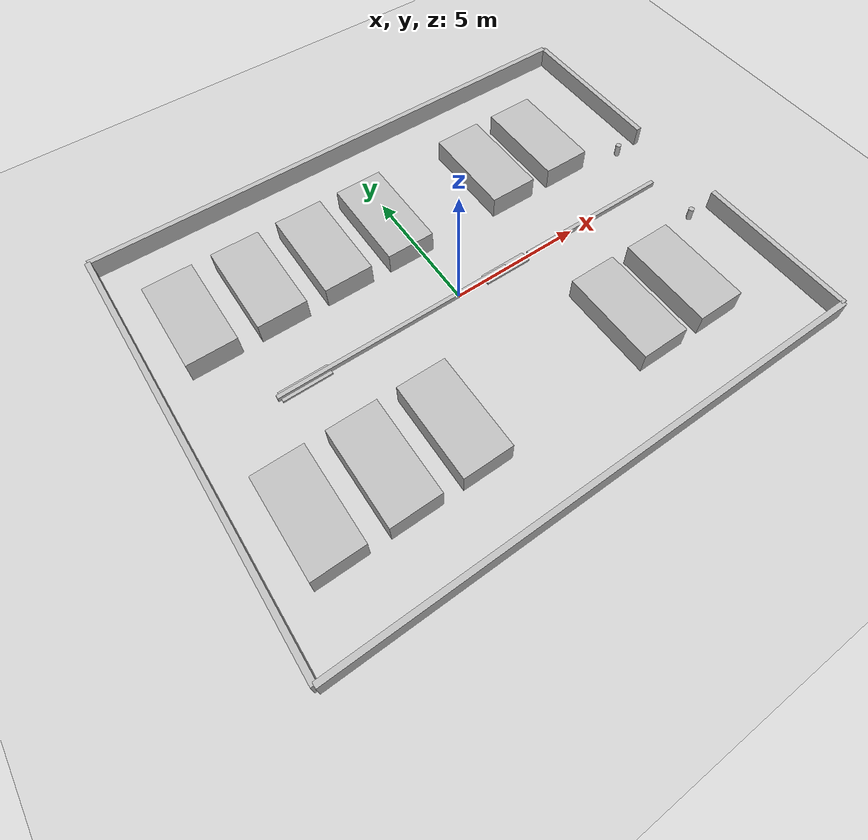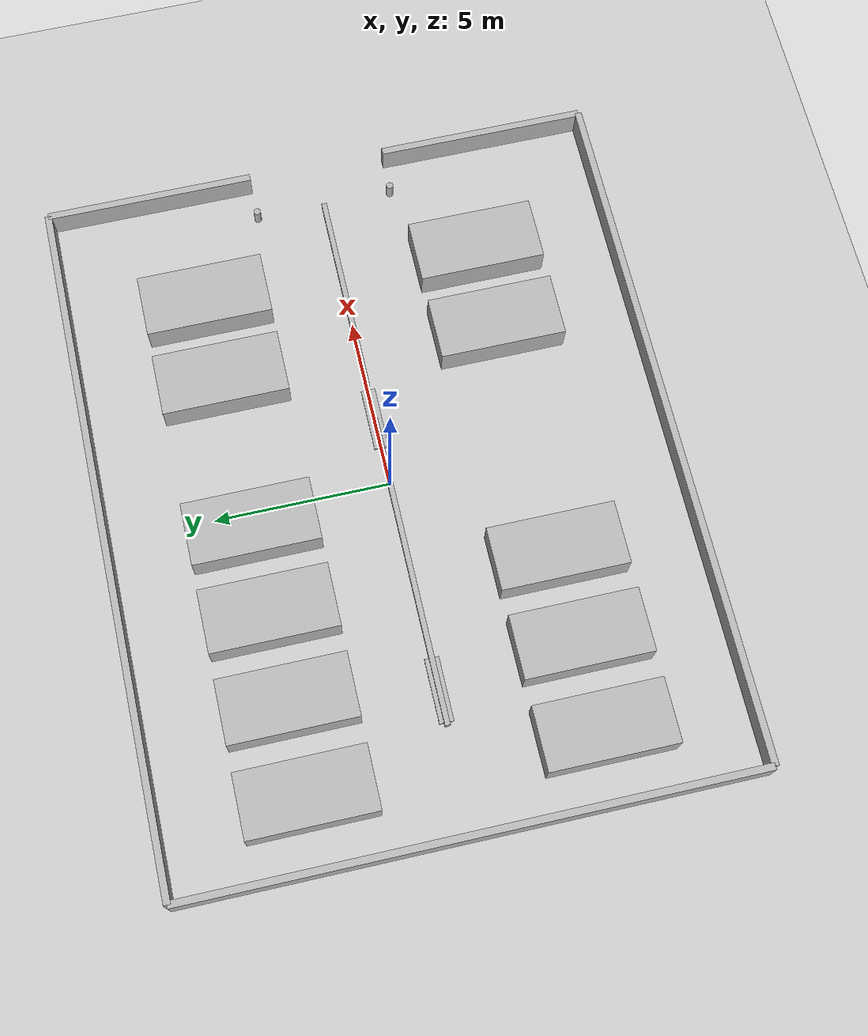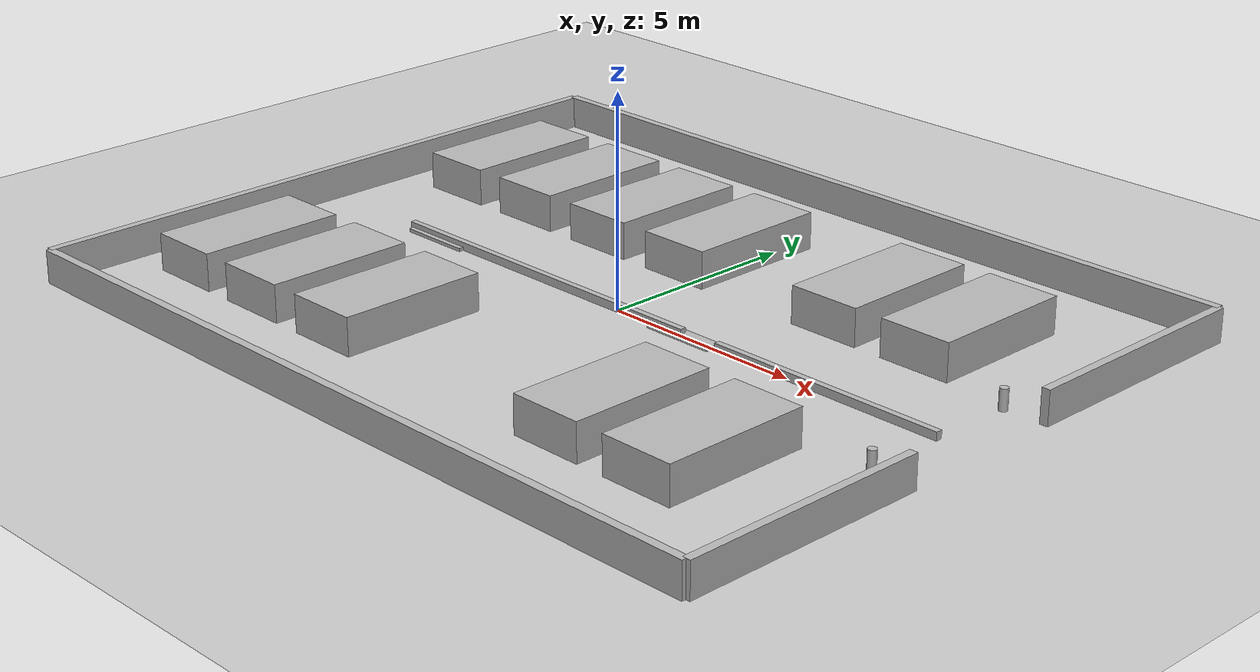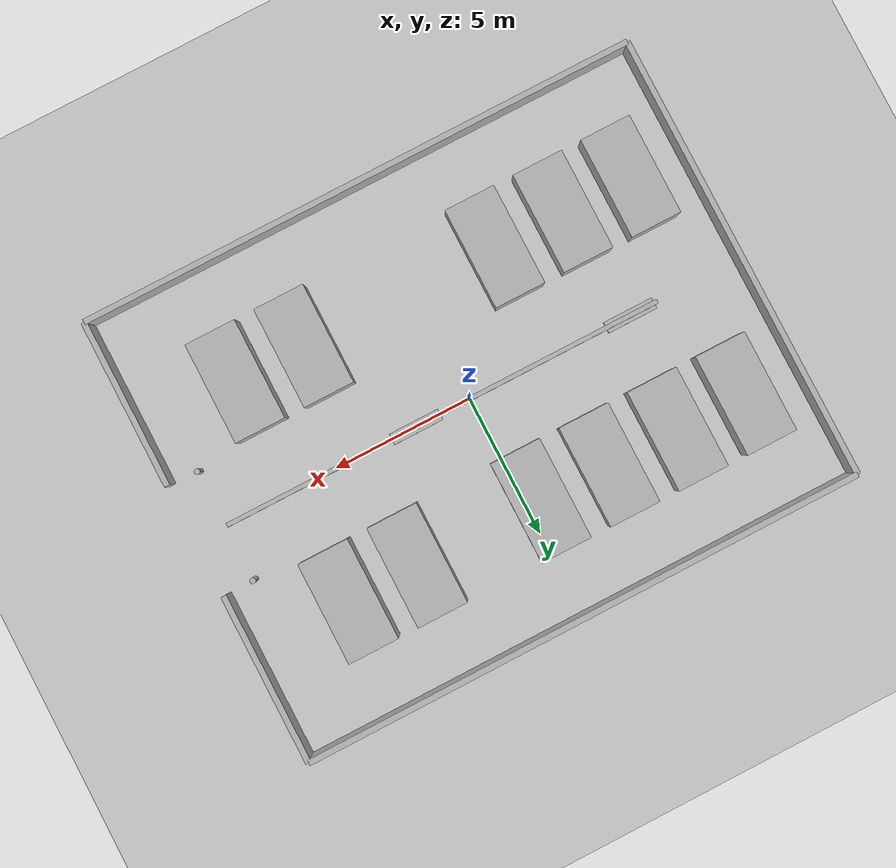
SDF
<?xml version="1.0" ?>
<sdf version="1.6">
  <world name="parking_lot">

    <physics type="ode">
      <real_time_update_rate>1000.0</real_time_update_rate>
      <max_step_size>0.001</max_step_size>
      <real_time_factor>1</real_time_factor>
      <ode>
        <solver>
          <type>quick</type>
          <iters>150</iters>
          <precon_iters>0</precon_iters>
          <sor>1.400000</sor>
          <use_dynamic_moi_rescaling>1</use_dynamic_moi_rescaling>
        </solver>
        <constraints>
          <cfm>0.00001</cfm>
          <erp>0.2</erp>
          <contact_max_correcting_vel>2000.000000</contact_max_correcting_vel>
          <contact_surface_layer>0.01000</contact_surface_layer>
        </constraints>
      </ode>
    </physics>

    <scene>
      <ambient>0.4 0.4 0.4 1</ambient>
      <background>0.7 0.7 0.7 1</background>
      <shadows>true</shadows>
    </scene>

    <!-- Sun -->
    <light name="sun" type="directional">
      <cast_shadows>true</cast_shadows>
      <pose>0 0 10 0 0 0</pose>
      <diffuse>0.8 0.8 0.8 1</diffuse>
      <specular>0.2 0.2 0.2 1</specular>
      <attenuation>
        <range>1000</range>
        <constant>0.9</constant>
        <linear>0.01</linear>
        <quadratic>0.001</quadratic>
      </attenuation>
      <direction>-0.5 0.1 -0.9</direction>
    </light>

    <!-- GROUND PLANE -->
    <model name="ground_plane">
      <static>true</static>
      <link name="link">
        <collision name="collision">
          <geometry>
            <plane>
              <normal>0 0 1</normal>
              <size>50 50</size>
            </plane>
          </geometry>
          <surface>
            <friction>
              <ode>
                <mu>100</mu>
                <mu2>50</mu2>
              </ode>
            </friction>
          </surface>
        </collision>
        <visual name="visual">
          <cast_shadows>false</cast_shadows>
          <geometry>
            <plane>
              <normal>0 0 1</normal>
              <size>50 50</size>
            </plane>
          </geometry>
          <material>
            <script>
              <uri>file://media/materials/scripts/gazebo.material</uri>
              <n>Gazebo/Grey</n>
            </script>
          </material>
        </visual>
      </link>
    </model>

    <!-- North wall -->
    <model name="wall_north">
      <static>true</static>
      <pose>0 8 0.4 0 0 0</pose>
      <link name="link">
        <collision name="collision">
          <geometry><box><size>20 0.2 0.8</size></box></geometry>
        </collision>
        <visual name="visual">
          <geometry><box><size>20 0.2 0.8</size></box></geometry>
          <material>
            <script>
              <uri>file://media/materials/scripts/gazebo.material</uri>
              <n>Gazebo/Grey</n>
            </script>
          </material>
        </visual>
      </link>
    </model>

    <!-- South wall -->
    <model name="wall_south">
      <static>true</static>
      <pose>0 -8 0.4 0 0 0</pose>
      <link name="link">
        <collision name="collision">
          <geometry><box><size>20 0.2 0.8</size></box></geometry>
        </collision>
        <visual name="visual">
          <geometry><box><size>20 0.2 0.8</size></box></geometry>
          <material>
            <script>
              <uri>file://media/materials/scripts/gazebo.material</uri>
              <n>Gazebo/Grey</n>
            </script>
          </material>
        </visual>
      </link>
    </model>

    <!-- West wall -->
    <model name="wall_west">
      <static>true</static>
      <pose>-10 0 0.4 0 0 0</pose>
      <link name="link">
        <collision name="collision">
          <geometry><box><size>0.2 16 0.8</size></box></geometry>
        </collision>
        <visual name="visual">
          <geometry><box><size>0.2 16 0.8</size></box></geometry>
          <material>
            <script>
              <uri>file://media/materials/scripts/gazebo.material</uri>
              <n>Gazebo/Grey</n>
            </script>
          </material>
        </visual>
      </link>
    </model>

    <!-- East wall north segment: from y=2 to y=8, length=6, centre y=5 -->
    <model name="wall_east_north">
      <static>true</static>
      <pose>10 5 0.4 0 0 0</pose>
      <link name="link">
        <collision name="collision">
          <geometry><box><size>0.2 6 0.8</size></box></geometry>
        </collision>
        <visual name="visual">
          <geometry><box><size>0.2 6 0.8</size></box></geometry>
          <material>
            <script>
              <uri>file://media/materials/scripts/gazebo.material</uri>
              <n>Gazebo/Grey</n>
            </script>
          </material>
        </visual>
      </link>
    </model>

    <!-- East wall south segment: from y=-8 to y=-2, length=6, centre y=-5 -->
    <model name="wall_east_south">
      <static>true</static>
      <pose>10 -5 0.4 0 0 0</pose>
      <link name="link">
        <collision name="collision">
          <geometry><box><size>0.2 6 0.8</size></box></geometry>
        </collision>
        <visual name="visual">
          <geometry><box><size>0.2 6 0.8</size></box></geometry>
          <material>
            <script>
              <uri>file://media/materials/scripts/gazebo.material</uri>
              <n>Gazebo/Grey</n>
            </script>
          </material>
        </visual>
      </link>
    </model>

    <!-- ═══════════════════════════════════════════════════════════
         PARKING DIVIDER — centre island separating two rows
    ═══════════════════════════════════════════════════════════ -->
    <model name="divider_west">
      <static>true</static>
      <pose>-2.5 0 0.1 0 0 0</pose>
      <link name="link">
        <collision name="collision">
          <geometry><box><size>9 0.15 0.2</size></box></geometry>
        </collision>
        <visual name="visual">
          <geometry><box><size>9 0.15 0.2</size></box></geometry>
          <material>
            <script>
              <uri>file://media/materials/scripts/gazebo.material</uri>
              <n>Gazebo/White</n>
            </script>
          </material>
        </visual>
      </link>
    </model>

    <model name="divider_east">
      <static>true</static>
      <pose>6 0 0.1 0 0 0</pose>
      <link name="link">
        <collision name="collision">
          <geometry><box><size>6 0.15 0.2</size></box></geometry>
        </collision>
        <visual name="visual">
          <geometry><box><size>6 0.15 0.2</size></box></geometry>
          <material>
            <script>
              <uri>file://media/materials/scripts/gazebo.material</uri>
              <n>Gazebo/White</n>
            </script>
          </material>
        </visual>
      </link>
    </model>

    <model name="car_n1">
      <static>true</static>
      <pose>-8 4 0.45 0 0 0</pose>
      <link name="link">
        <collision name="collision">
          <geometry><box><size>1.8 3.6 0.9</size></box></geometry>
        </collision>
        <visual name="visual">
          <geometry><box><size>1.8 3.6 0.9</size></box></geometry>
          <material>
            <script>
              <uri>file://media/materials/scripts/gazebo.material</uri>
              <n>Gazebo/Blue</n>
            </script>
          </material>
        </visual>
      </link>
    </model>

    <model name="car_n2">
      <static>true</static>
      <pose>-5.5 4 0.45 0 0 0</pose>
      <link name="link">
        <collision name="collision">
          <geometry><box><size>1.8 3.6 0.9</size></box></geometry>
        </collision>
        <visual name="visual">
          <geometry><box><size>1.8 3.6 0.9</size></box></geometry>
          <material>
            <script>
              <uri>file://media/materials/scripts/gazebo.material</uri>
              <n>Gazebo/Red</n>
            </script>
          </material>
        </visual>
      </link>
    </model>

    <model name="car_n3">
      <static>true</static>
      <pose>-3 4 0.45 0 0 0</pose>
      <link name="link">
        <collision name="collision">
          <geometry><box><size>1.8 3.6 0.9</size></box></geometry>
        </collision>
        <visual name="visual">
          <geometry><box><size>1.8 3.6 0.9</size></box></geometry>
          <material>
            <script>
              <uri>file://media/materials/scripts/gazebo.material</uri>
              <n>Gazebo/Green</n>
            </script>
          </material>
        </visual>
      </link>
    </model>

    <model name="car_n4">
      <static>true</static>
      <pose>-0.5 4 0.45 0 0 0</pose>
      <link name="link">
        <collision name="collision">
          <geometry><box><size>1.8 3.6 0.9</size></box></geometry>
        </collision>
        <visual name="visual">
          <geometry><box><size>1.8 3.6 0.9</size></box></geometry>
          <material>
            <script>
              <uri>file://media/materials/scripts/gazebo.material</uri>
              <n>Gazebo/Yellow</n>
            </script>
          </material>
        </visual>
      </link>
    </model>

    <model name="car_n5">
      <static>true</static>
      <pose>4 4 0.45 0 0 0</pose>
      <link name="link">
        <collision name="collision">
          <geometry><box><size>1.8 3.6 0.9</size></box></geometry>
        </collision>
        <visual name="visual">
          <geometry><box><size>1.8 3.6 0.9</size></box></geometry>
          <material>
            <script>
              <uri>file://media/materials/scripts/gazebo.material</uri>
              <n>Gazebo/Blue</n>
            </script>
          </material>
        </visual>
      </link>
    </model>

    <model name="car_n6">
      <static>true</static>
      <pose>6.5 4 0.45 0 0 0</pose>
      <link name="link">
        <collision name="collision">
          <geometry><box><size>1.8 3.6 0.9</size></box></geometry>
        </collision>
        <visual name="visual">
          <geometry><box><size>1.8 3.6 0.9</size></box></geometry>
          <material>
            <script>
              <uri>file://media/materials/scripts/gazebo.material</uri>
              <n>Gazebo/Red</n>
            </script>
          </material>
        </visual>
      </link>
    </model>

    <!-- ═══════════════════════════════════════════════════════════
         PARKED CARS — SOUTH ROW  (y=-4)
    ═══════════════════════════════════════════════════════════ -->

    <model name="car_s1">
      <static>true</static>
      <pose>-8 -4 0.45 0 0 0</pose>
      <link name="link">
        <collision name="collision">
          <geometry><box><size>1.8 3.6 0.9</size></box></geometry>
        </collision>
        <visual name="visual">
          <geometry><box><size>1.8 3.6 0.9</size></box></geometry>
          <material>
            <script>
              <uri>file://media/materials/scripts/gazebo.material</uri>
              <n>Gazebo/Green</n>
            </script>
          </material>
        </visual>
      </link>
    </model>

    <model name="car_s2">
      <static>true</static>
      <pose>-5.5 -4 0.45 0 0 0</pose>
      <link name="link">
        <collision name="collision">
          <geometry><box><size>1.8 3.6 0.9</size></box></geometry>
        </collision>
        <visual name="visual">
          <geometry><box><size>1.8 3.6 0.9</size></box></geometry>
          <material>
            <script>
              <uri>file://media/materials/scripts/gazebo.material</uri>
              <n>Gazebo/Yellow</n>
            </script>
          </material>
        </visual>
      </link>
    </model>

    <model name="car_s3">
      <static>true</static>
      <pose>-3 -4 0.45 0 0 0</pose>
      <link name="link">
        <collision name="collision">
          <geometry><box><size>1.8 3.6 0.9</size></box></geometry>
        </collision>
        <visual name="visual">
          <geometry><box><size>1.8 3.6 0.9</size></box></geometry>
          <material>
            <script>
              <uri>file://media/materials/scripts/gazebo.material</uri>
              <n>Gazebo/Blue</n>
            </script>
          </material>
        </visual>
      </link>
    </model>

    <!-- car_s4 intentionally missing — empty parking spot for robot goal -->

    <model name="car_s5">
      <static>true</static>
      <pose>4 -4 0.45 0 0 0</pose>
      <link name="link">
        <collision name="collision">
          <geometry><box><size>1.8 3.6 0.9</size></box></geometry>
        </collision>
        <visual name="visual">
          <geometry><box><size>1.8 3.6 0.9</size></box></geometry>
          <material>
            <script>
              <uri>file://media/materials/scripts/gazebo.material</uri>
              <n>Gazebo/Red</n>
            </script>
          </material>
        </visual>
      </link>
    </model>

    <model name="car_s6">
      <static>true</static>
      <pose>6.5 -4 0.45 0 0 0</pose>
      <link name="link">
        <collision name="collision">
          <geometry><box><size>1.8 3.6 0.9</size></box></geometry>
        </collision>
        <visual name="visual">
          <geometry><box><size>1.8 3.6 0.9</size></box></geometry>
          <material>
            <script>
              <uri>file://media/materials/scripts/gazebo.material</uri>
              <n>Gazebo/Green</n>
            </script>
          </material>
        </visual>
      </link>
    </model>

    <!-- ═══════════════════════════════════════════════════════════
         SPEED BUMPS — in the driving lane
    ═══════════════════════════════════════════════════════════ -->
    <model name="speed_bump_1">
      <static>true</static>
      <pose>-6 0 0.04 0 0 0</pose>
      <link name="link">
        <collision name="collision">
          <geometry><box><size>1.8 0.4 0.08</size></box></geometry>
        </collision>
        <visual name="visual">
          <geometry><box><size>1.8 0.4 0.08</size></box></geometry>
          <material>
            <script>
              <uri>file://media/materials/scripts/gazebo.material</uri>
              <n>Gazebo/Yellow</n>
            </script>
          </material>
        </visual>
      </link>
    </model>

    <model name="speed_bump_2">
      <static>true</static>
      <pose>2 0 0.04 0 0 0</pose>
      <link name="link">
        <collision name="collision">
          <geometry><box><size>1.8 0.4 0.08</size></box></geometry>
        </collision>
        <visual name="visual">
          <geometry><box><size>1.8 0.4 0.08</size></box></geometry>
          <material>
            <script>
              <uri>file://media/materials/scripts/gazebo.material</uri>
              <n>Gazebo/Yellow</n>
            </script>
          </material>
        </visual>
      </link>
    </model>

    <!-- ═══════════════════════════════════════════════════════════
         BOLLARDS — at the entrance
    ═══════════════════════════════════════════════════════════ -->
    <model name="bollard_1">
      <static>true</static>
      <pose>9 2 0.25 0 0 0</pose>
      <link name="link">
        <collision name="collision">
          <geometry><cylinder><radius>0.1</radius><length>0.5</length></cylinder></geometry>
        </collision>
        <visual name="visual">
          <geometry><cylinder><radius>0.1</radius><length>0.5</length></cylinder></geometry>
          <material>
            <script>
              <uri>file://media/materials/scripts/gazebo.material</uri>
              <n>Gazebo/Yellow</n>
            </script>
          </material>
        </visual>
      </link>
    </model>

    <model name="bollard_2">
      <static>true</static>
      <pose>9 -2 0.25 0 0 0</pose>
      <link name="link">
        <collision name="collision">
          <geometry><cylinder><radius>0.1</radius><length>0.5</length></cylinder></geometry>
        </collision>
        <visual name="visual">
          <geometry><cylinder><radius>0.1</radius><length>0.5</length></cylinder></geometry>
          <material>
            <script>
              <uri>file://media/materials/scripts/gazebo.material</uri>
              <n>Gazebo/Yellow</n>
            </script>
          </material>
        </visual>
      </link>
    </model>

    <!-- GUI CAMERA -->
    <gui fullscreen="0">
      <camera name="user_camera">
        <pose>0 0 28 0 1.5707 0</pose>
        <view_controller>orbit</view_controller>
      </camera>
    </gui>

  </world>
</sdf>
